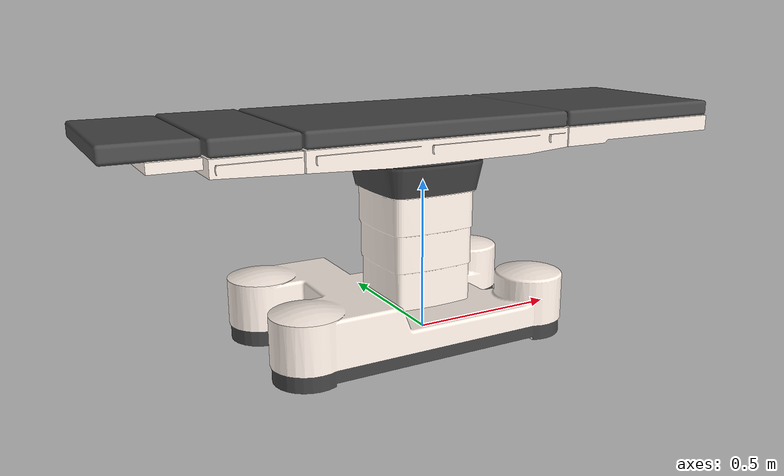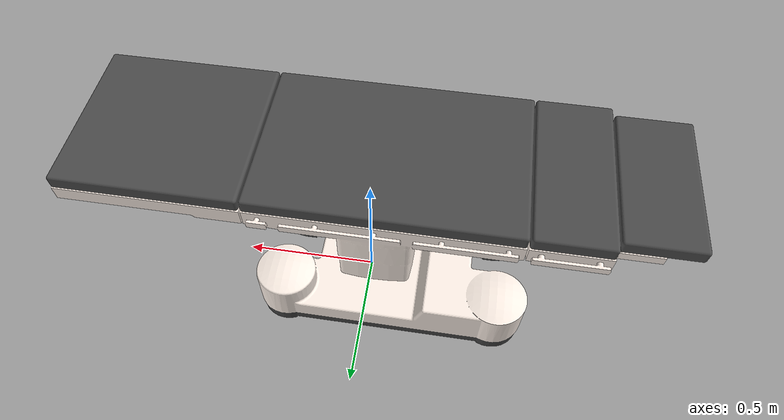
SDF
<?xml version="1.0" ?>
<sdf version="1.5">
  <model name="operating_table">
    <static>true</static>
    <link name="table">
      <inertial>
        <mass>40</mass>
      </inertial>

      <collision name="collision_table">
        <geometry>
          <box>
            <size>2.0 0.735 0.66</size>
          </box>
        </geometry>
        <pose>0 0 0.33 0 0 0</pose>
      </collision>

      <visual name="visual_table">
        <geometry>
          <mesh>
            <uri>model://operating_table/meshes/operating_table.dae</uri>
          </mesh>
        </geometry>
      </visual>
    </link>
  </model>
</sdf>
